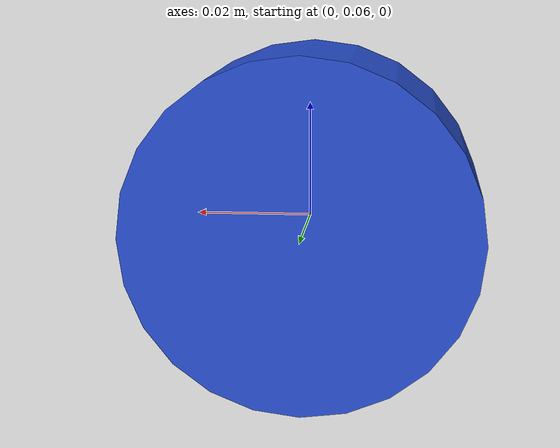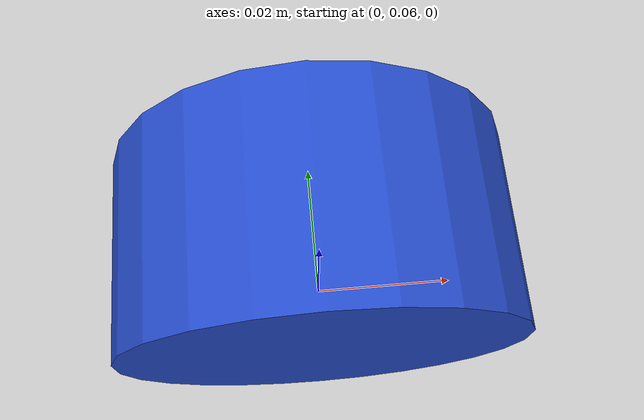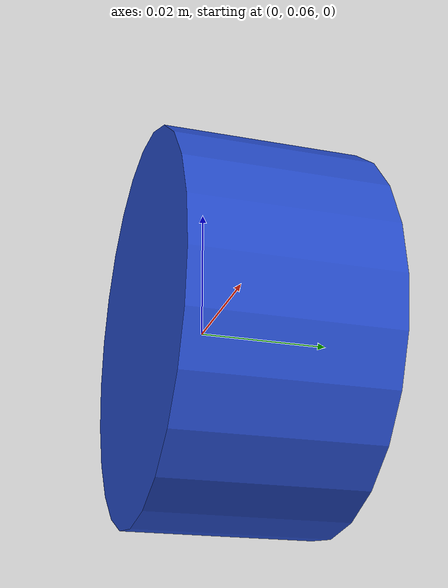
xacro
<?xml version="1.0"?>
<robot xmlns:xacro="http://ros.org/wiki/xacro" name="urdf_test" >

    <xacro:include filename="macro.xacro"/>
    <material name="white">
        <color rgba="1.0 1.0 1.0 1.0"/>
    </material>

    <!-- BASE -->
    <link name="base_link">
    </link>

    <joint name="left_wheel_joint" type="continuous">
        <parent link="base_link"/>
        <child link="left_wheel"/>
        <origin xyz="0 0.065 0" rpy="-${pi/2} 0 0" />
        <axis xyz="0 0 1"/>
    </joint>

    <link name="left_wheel">
        <visual>
            <geometry>
                <cylinder radius="0.03" length="0.03"/>
            </geometry>
            <material name="blue"/>
        </visual>
        <collision>
            <geometry>
                <cylinder radius="0.03" length="0.03"/>
            </geometry>
        </collision>
        <xacro:inertial_cylinder mass="0.1" length="0.03" radius="0.03">
            <origin xyz="0 0 0" rpy="0 0 0"/>
        </xacro:inertial_cylinder>
    </link>

</robot>
